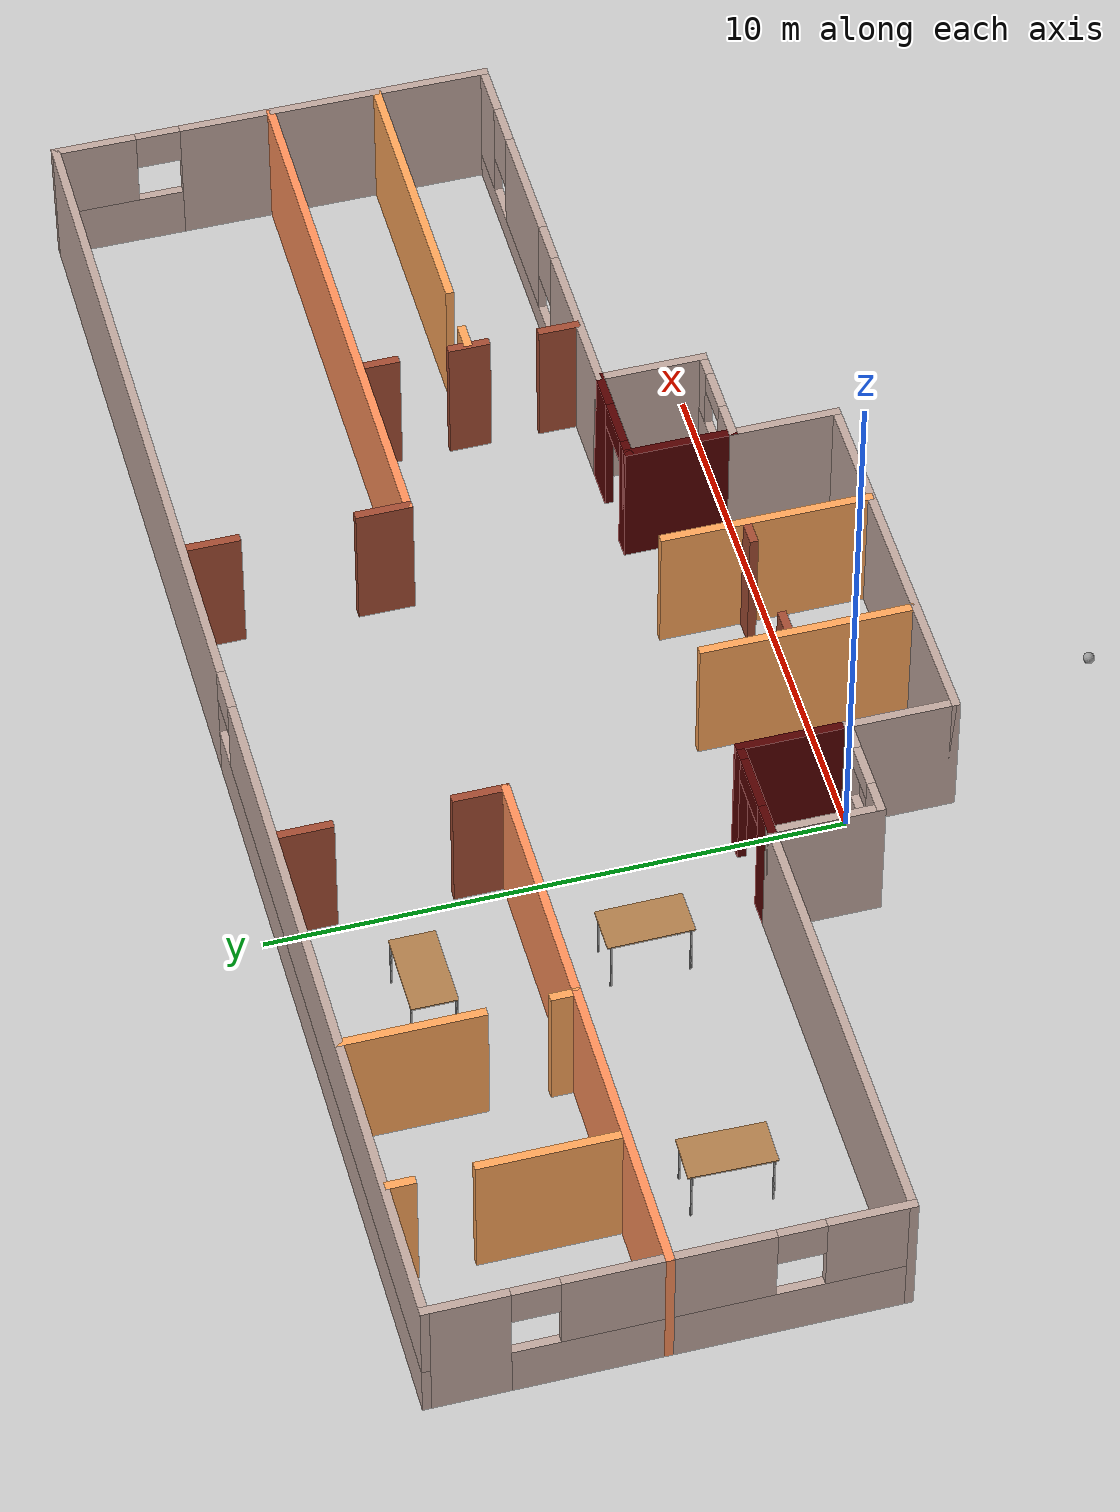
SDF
<sdf version="1.6">
 <world name="default">
  <model name="ground_plane">
   <static>1</static>
   <link name="link">
    <collision name="collision">
     <geometry><plane><normal>0 0 1</normal><size>100 100</size></plane></geometry>
     <surface>
      <contact><collide_bitmask>65535</collide_bitmask></contact>
      <friction><ode><mu>100</mu><mu2>50</mu2></ode></friction>
     </surface>
    </collision>
    <visual name="visual">
     <cast_shadows>0</cast_shadows>
     <geometry><plane><normal>0 0 1</normal><size>100 100</size></plane></geometry>
     <material>
      <script><uri>file://media/materials/scripts/gazebo.material</uri><name>Gazebo/Grey</name></script>
     </material>
    </visual>
   </link>
  </model>
  <model name="model">
   <pose>3.47044 3.95113 0 0 -0 0</pose>
   <link name="Wall_10">
    <pose>4.35076 -3.925 0 0 -0 0</pose>
    <visual name="Wall_10_Visual_0">
     <pose>-0.647646 0 1.25 0 -0 0</pose>
     <geometry><box><size>0.704708 0.15 2.5</size></box></geometry>
     <material>
      <script><uri>file://media/materials/scripts/gazebo.material</uri><name>Gazebo/Grey</name></script>
      <ambient>0.760784 0.662745 0.627451 1</ambient>
     </material>
     <meta><layer>0</layer></meta>
    </visual>
    <collision name="Wall_10_Collision_0">
     <geometry><box><size>0.704708 0.15 2.5</size></box></geometry>
     <pose>-0.647646 0 1.25 0 -0 0</pose>
    </collision>
    <visual name="Wall_10_Visual_1">
     <pose>0.352354 0 0.65 0 -0 0</pose>
     <geometry><box><size>1.29529 0.15 1.3</size></box></geometry>
     <material>
      <script><uri>file://media/materials/scripts/gazebo.material</uri><name>Gazebo/Grey</name></script>
      <ambient>0.760784 0.662745 0.627451 1</ambient>
     </material>
     <meta><layer>0</layer></meta>
    </visual>
    <collision name="Wall_10_Collision_1">
     <geometry><box><size>1.29529 0.15 1.3</size></box></geometry>
     <pose>0.352354 0 0.65 0 -0 0</pose>
    </collision>
    <visual name="Wall_10_Visual_2">
     <pose>0.752354 0 1.9 0 -0 0</pose>
     <geometry><box><size>0.495292 0.15 1.2</size></box></geometry>
     <material>
      <script><uri>file://media/materials/scripts/gazebo.material</uri><name>Gazebo/Grey</name></script>
      <ambient>0.760784 0.662745 0.627451 1</ambient>
     </material>
     <meta><layer>0</layer></meta>
    </visual>
    <collision name="Wall_10_Collision_2">
     <geometry><box><size>0.495292 0.15 1.2</size></box></geometry>
     <pose>0.752354 0 1.9 0 -0 0</pose>
    </collision>
    <visual name="Wall_10_Visual_3">
     <pose>0.104708 0 2.3 0 -0 0</pose>
     <geometry><box><size>0.8 0.15 0.4</size></box></geometry>
     <material>
      <script><uri>file://media/materials/scripts/gazebo.material</uri><name>Gazebo/Grey</name></script>
      <ambient>0.760784 0.662745 0.627451 1</ambient>
     </material>
     <meta><layer>0</layer></meta>
    </visual>
    <collision name="Wall_10_Collision_3">
     <geometry><box><size>0.8 0.15 0.4</size></box></geometry>
     <pose>0.104708 0 2.3 0 -0 0</pose>
    </collision>
   </link>
   <link name="Wall_11">
    <collision name="Wall_11_Collision">
     <geometry><box><size>2 0.15 2.5</size></box></geometry>
     <pose>0 0 1.25 0 -0 0</pose>
    </collision>
    <visual name="Wall_11_Visual">
     <pose>0 0 1.25 0 -0 0</pose>
     <geometry><box><size>2 0.15 2.5</size></box></geometry>
     <material>
      <script><uri>file://media/materials/scripts/gazebo.material</uri><name>Gazebo/Grey</name></script>
      <ambient>0.760784 0.662745 0.627451 1</ambient>
     </material>
     <meta><layer>0</layer></meta>
    </visual>
    <pose>5.27576 -3 0 0 -0 1.5708</pose>
   </link>
   <link name="Wall_12">
    <pose>9.20076 -2.075 0 0 -0 0</pose>
    <visual name="Wall_12_Visual_0">
     <pose>-2.47082 0 1.25 0 -0 0</pose>
     <geometry><box><size>3.05836 0.15 2.5</size></box></geometry>
     <material>
      <script><uri>file://media/materials/scripts/gazebo.material</uri><name>Gazebo/Grey</name></script>
      <ambient>0.760784 0.662745 0.627451 1</ambient>
     </material>
     <meta><layer>0</layer></meta>
    </visual>
    <collision name="Wall_12_Collision_0">
     <geometry><box><size>3.05836 0.15 2.5</size></box></geometry>
     <pose>-2.47082 0 1.25 0 -0 0</pose>
    </collision>
    <visual name="Wall_12_Visual_1">
     <pose>1.52918 0 0.25 0 -0 0</pose>
     <geometry><box><size>4.94164 0.15 0.5</size></box></geometry>
     <material>
      <script><uri>file://media/materials/scripts/gazebo.material</uri><name>Gazebo/Grey</name></script>
      <ambient>0.760784 0.662745 0.627451 1</ambient>
     </material>
     <meta><layer>0</layer></meta>
    </visual>
    <collision name="Wall_12_Collision_1">
     <geometry><box><size>4.94164 0.15 0.5</size></box></geometry>
     <pose>1.52918 0 0.25 0 -0 0</pose>
    </collision>
    <visual name="Wall_12_Visual_2">
     <pose>0.995093 0 1.5 0 -0 0</pose>
     <geometry><box><size>2.27347 0.15 2</size></box></geometry>
     <material>
      <script><uri>file://media/materials/scripts/gazebo.material</uri><name>Gazebo/Grey</name></script>
      <ambient>0.760784 0.662745 0.627451 1</ambient>
     </material>
     <meta><layer>0</layer></meta>
    </visual>
    <collision name="Wall_12_Collision_2">
     <geometry><box><size>2.27347 0.15 2</size></box></geometry>
     <pose>0.995093 0 1.5 0 -0 0</pose>
    </collision>
    <visual name="Wall_12_Visual_3">
     <pose>3.46591 0 1.5 0 -0 0</pose>
     <geometry><box><size>1.06817 0.15 2</size></box></geometry>
     <material>
      <script><uri>file://media/materials/scripts/gazebo.material</uri><name>Gazebo/Grey</name></script>
      <ambient>0.760784 0.662745 0.627451 1</ambient>
     </material>
     <meta><layer>0</layer></meta>
    </visual>
    <collision name="Wall_12_Collision_3">
     <geometry><box><size>1.06817 0.15 2</size></box></geometry>
     <pose>3.46591 0 1.5 0 -0 0</pose>
    </collision>
    <visual name="Wall_12_Visual_4">
     <pose>-0.54164 0 1.9 0 -0 0</pose>
     <geometry><box><size>0.8 0.15 1.2</size></box></geometry>
     <material>
      <script><uri>file://media/materials/scripts/gazebo.material</uri><name>Gazebo/Grey</name></script>
      <ambient>0.760784 0.662745 0.627451 1</ambient>
     </material>
     <meta><layer>0</layer></meta>
    </visual>
    <collision name="Wall_12_Collision_4">
     <geometry><box><size>0.8 0.15 1.2</size></box></geometry>
     <pose>-0.54164 0 1.9 0 -0 0</pose>
    </collision>
    <visual name="Wall_12_Visual_5">
     <pose>2.53183 0 1.9 0 -0 0</pose>
     <geometry><box><size>0.8 0.15 1.2</size></box></geometry>
     <material>
      <script><uri>file://media/materials/scripts/gazebo.material</uri><name>Gazebo/Grey</name></script>
      <ambient>0.760784 0.662745 0.627451 1</ambient>
     </material>
     <meta><layer>0</layer></meta>
    </visual>
    <collision name="Wall_12_Collision_5">
     <geometry><box><size>0.8 0.15 1.2</size></box></geometry>
     <pose>2.53183 0 1.9 0 -0 0</pose>
    </collision>
   </link>
   <link name="Wall_13">
    <pose>13.1258 1.85 0 0 -0 1.5708</pose>
    <visual name="Wall_13_Visual_0">
     <pose>-1.15834 0 1.25 0 -0 0</pose>
     <geometry><box><size>5.68331 0.15 2.5</size></box></geometry>
     <material>
      <script><uri>file://media/materials/scripts/gazebo.material</uri><name>Gazebo/Grey</name></script>
      <ambient>0.760784 0.662745 0.627451 1</ambient>
     </material>
     <meta><layer>0</layer></meta>
    </visual>
    <collision name="Wall_13_Collision_0">
     <geometry><box><size>5.68331 0.15 2.5</size></box></geometry>
     <pose>-1.15834 0 1.25 0 -0 0</pose>
    </collision>
    <visual name="Wall_13_Visual_1">
     <pose>2.84165 0 0.5 0 -0 0</pose>
     <geometry><box><size>2.31669 0.15 1</size></box></geometry>
     <material>
      <script><uri>file://media/materials/scripts/gazebo.material</uri><name>Gazebo/Grey</name></script>
      <ambient>0.760784 0.662745 0.627451 1</ambient>
     </material>
     <meta><layer>0</layer></meta>
    </visual>
    <collision name="Wall_13_Collision_1">
     <geometry><box><size>2.31669 0.15 1</size></box></geometry>
     <pose>2.84165 0 0.5 0 -0 0</pose>
    </collision>
    <visual name="Wall_13_Visual_2">
     <pose>3.24166 0 1.75 0 -0 0</pose>
     <geometry><box><size>1.51669 0.15 1.5</size></box></geometry>
     <material>
      <script><uri>file://media/materials/scripts/gazebo.material</uri><name>Gazebo/Grey</name></script>
      <ambient>0.760784 0.662745 0.627451 1</ambient>
     </material>
     <meta><layer>0</layer></meta>
    </visual>
    <collision name="Wall_13_Collision_2">
     <geometry><box><size>1.51669 0.15 1.5</size></box></geometry>
     <pose>3.24166 0 1.75 0 -0 0</pose>
    </collision>
    <visual name="Wall_13_Visual_3">
     <pose>2.08331 0 2.15 0 -0 0</pose>
     <geometry><box><size>0.8 0.15 0.7</size></box></geometry>
     <material>
      <script><uri>file://media/materials/scripts/gazebo.material</uri><name>Gazebo/Grey</name></script>
      <ambient>0.760784 0.662745 0.627451 1</ambient>
     </material>
     <meta><layer>0</layer></meta>
    </visual>
    <collision name="Wall_13_Collision_3">
     <geometry><box><size>0.8 0.15 0.7</size></box></geometry>
     <pose>2.08331 0 2.15 0 -0 0</pose>
    </collision>
   </link>
   <link name="Wall_14">
    <pose>0.000761 5.775 0 0 -0 3.14159</pose>
    <visual name="Wall_14_Visual_0">
     <pose>-6.79874 0 1.25 0 -0 0</pose>
     <geometry><box><size>12.8025 0.15 2.5</size></box></geometry>
     <material>
      <script><uri>file://media/materials/scripts/gazebo.material</uri><name>Gazebo/Grey</name></script>
      <ambient>0.760784 0.662745 0.627451 1</ambient>
     </material>
     <meta><layer>0</layer></meta>
    </visual>
    <collision name="Wall_14_Collision_0">
     <geometry><box><size>12.8025 0.15 2.5</size></box></geometry>
     <pose>-6.79874 0 1.25 0 -0 0</pose>
    </collision>
    <visual name="Wall_14_Visual_1">
     <pose>6.40126 0 0.5 0 -0 0</pose>
     <geometry><box><size>13.5975 0.15 1</size></box></geometry>
     <material>
      <script><uri>file://media/materials/scripts/gazebo.material</uri><name>Gazebo/Grey</name></script>
      <ambient>0.760784 0.662745 0.627451 1</ambient>
     </material>
     <meta><layer>0</layer></meta>
    </visual>
    <collision name="Wall_14_Collision_1">
     <geometry><box><size>13.5975 0.15 1</size></box></geometry>
     <pose>6.40126 0 0.5 0 -0 0</pose>
    </collision>
    <visual name="Wall_14_Visual_2">
     <pose>6.80126 0 1.75 0 -0 0</pose>
     <geometry><box><size>12.7975 0.15 1.5</size></box></geometry>
     <material>
      <script><uri>file://media/materials/scripts/gazebo.material</uri><name>Gazebo/Grey</name></script>
      <ambient>0.760784 0.662745 0.627451 1</ambient>
     </material>
     <meta><layer>0</layer></meta>
    </visual>
    <collision name="Wall_14_Collision_2">
     <geometry><box><size>12.7975 0.15 1.5</size></box></geometry>
     <pose>6.80126 0 1.75 0 -0 0</pose>
    </collision>
    <visual name="Wall_14_Visual_3">
     <pose>0.002526 0 2.15 0 -0 0</pose>
     <geometry><box><size>0.8 0.15 0.7</size></box></geometry>
     <material>
      <script><uri>file://media/materials/scripts/gazebo.material</uri><name>Gazebo/Grey</name></script>
      <ambient>0.760784 0.662745 0.627451 1</ambient>
     </material>
     <meta><layer>0</layer></meta>
    </visual>
    <collision name="Wall_14_Collision_3">
     <geometry><box><size>0.8 0.15 0.7</size></box></geometry>
     <pose>0.002526 0 2.15 0 -0 0</pose>
    </collision>
   </link>
   <link name="Wall_17">
    <collision name="Wall_17_Collision">
     <geometry><box><size>2 0.15 2.5</size></box></geometry>
     <pose>0 0 1.25 0 -0 0</pose>
    </collision>
    <visual name="Wall_17_Visual">
     <pose>0 0 1.25 0 -0 0</pose>
     <geometry><box><size>2 0.15 2.5</size></box></geometry>
     <material>
      <script><uri>file://media/materials/scripts/gazebo.material</uri><name>Gazebo/Grey</name></script>
      <ambient>0.333333 0 0 1</ambient>
     </material>
     <meta><layer>0</layer></meta>
    </visual>
    <pose>-3.42424 -3 0 0 -0 1.5708</pose>
   </link>
   <link name="Wall_19">
    <collision name="Wall_19_Collision">
     <geometry><box><size>2 0.15 2.5</size></box></geometry>
     <pose>0 0 1.25 0 -0 0</pose>
    </collision>
    <visual name="Wall_19_Visual">
     <pose>0 0 1.25 0 -0 0</pose>
     <geometry><box><size>2 0.15 2.5</size></box></geometry>
     <material>
      <script><uri>file://media/materials/scripts/gazebo.material</uri><name>Gazebo/Grey</name></script>
      <ambient>0.333333 0 0 1</ambient>
     </material>
     <meta><layer>0</layer></meta>
    </visual>
    <pose>3.42576 -3 0 0 -0 1.5708</pose>
   </link>
   <link name="Wall_23">
    <pose>-4.34924 -2.075 0 0 -0 0</pose>
    <visual name="Wall_23_Visual_0">
     <pose>-0.695709 0 1.25 0 -0 0</pose>
     <geometry><box><size>0.608582 0.15 2.5</size></box></geometry>
     <material>
      <script><uri>file://media/materials/scripts/gazebo.material</uri><name>Gazebo/Grey</name></script>
      <ambient>0.333333 0 0 1</ambient>
     </material>
     <meta><layer>0</layer></meta>
    </visual>
    <collision name="Wall_23_Collision_0">
     <geometry><box><size>0.608582 0.15 2.5</size></box></geometry>
     <pose>-0.695709 0 1.25 0 -0 0</pose>
    </collision>
    <visual name="Wall_23_Visual_1">
     <pose>0.821594 0 1.25 0 -0 0</pose>
     <geometry><box><size>0.356813 0.15 2.5</size></box></geometry>
     <material>
      <script><uri>file://media/materials/scripts/gazebo.material</uri><name>Gazebo/Grey</name></script>
      <ambient>0.333333 0 0 1</ambient>
     </material>
     <meta><layer>0</layer></meta>
    </visual>
    <collision name="Wall_23_Collision_1">
     <geometry><box><size>0.356813 0.15 2.5</size></box></geometry>
     <pose>0.821594 0 1.25 0 -0 0</pose>
    </collision>
    <visual name="Wall_23_Visual_2">
     <pose>0.125884 0 2.25 0 -0 0</pose>
     <geometry><box><size>1.03461 0.15 0.5</size></box></geometry>
     <material>
      <script><uri>file://media/materials/scripts/gazebo.material</uri><name>Gazebo/Grey</name></script>
      <ambient>0.333333 0 0 1</ambient>
     </material>
     <meta><layer>0</layer></meta>
    </visual>
    <collision name="Wall_23_Collision_2">
     <geometry><box><size>1.03461 0.15 0.5</size></box></geometry>
     <pose>0.125884 0 2.25 0 -0 0</pose>
    </collision>
   </link>
   <link name="Wall_25">
    <pose>4.35076 -2.075 0 0 -0 0</pose>
    <visual name="Wall_25_Visual_0">
     <pose>-0.82203 0 1.25 0 -0 0</pose>
     <geometry><box><size>0.35594 0.15 2.5</size></box></geometry>
     <material>
      <script><uri>file://media/materials/scripts/gazebo.material</uri><name>Gazebo/Grey</name></script>
      <ambient>0.337255 0 0 1</ambient>
     </material>
     <meta><layer>0</layer></meta>
    </visual>
    <collision name="Wall_25_Collision_0">
     <geometry><box><size>0.35594 0.15 2.5</size></box></geometry>
     <pose>-0.82203 0 1.25 0 -0 0</pose>
    </collision>
    <visual name="Wall_25_Visual_1">
     <pose>0.62797 0 1.25 0 -0 0</pose>
     <geometry><box><size>0.74406 0.15 2.5</size></box></geometry>
     <material>
      <script><uri>file://media/materials/scripts/gazebo.material</uri><name>Gazebo/Grey</name></script>
      <ambient>0.337255 0 0 1</ambient>
     </material>
     <meta><layer>0</layer></meta>
    </visual>
    <collision name="Wall_25_Collision_1">
     <geometry><box><size>0.74406 0.15 2.5</size></box></geometry>
     <pose>0.62797 0 1.25 0 -0 0</pose>
    </collision>
    <visual name="Wall_25_Visual_2">
     <pose>-0.19406 0 2.25 0 -0 0</pose>
     <geometry><box><size>0.9 0.15 0.5</size></box></geometry>
     <material>
      <script><uri>file://media/materials/scripts/gazebo.material</uri><name>Gazebo/Grey</name></script>
      <ambient>0.337255 0 0 1</ambient>
     </material>
     <meta><layer>0</layer></meta>
    </visual>
    <collision name="Wall_25_Collision_2">
     <geometry><box><size>0.9 0.15 0.5</size></box></geometry>
     <pose>-0.19406 0 2.25 0 -0 0</pose>
    </collision>
   </link>
   <link name="Wall_27">
    <collision name="Wall_27_Collision">
     <geometry><box><size>10 0.15 2.5</size></box></geometry>
     <pose>0 0 1.25 0 -0 0</pose>
    </collision>
    <visual name="Wall_27_Visual">
     <pose>0 0 1.25 0 -0 0</pose>
     <geometry><box><size>10 0.15 2.5</size></box></geometry>
     <material>
      <script><uri>file://media/materials/scripts/gazebo.material</uri><name>Gazebo/Grey</name></script>
      <ambient>1 0.568627 0.352941 1</ambient>
     </material>
     <meta><layer>0</layer></meta>
    </visual>
    <pose>-8.20076 1.8559 0 0 -0 0</pose>
   </link>
   <link name="Wall_29">
    <collision name="Wall_29_Collision">
     <geometry><box><size>1 0.15 2.5</size></box></geometry>
     <pose>0 0 1.25 0 -0 0</pose>
    </collision>
    <visual name="Wall_29_Visual">
     <pose>0 0 1.25 0 -0 0</pose>
     <geometry><box><size>1 0.15 2.5</size></box></geometry>
     <material>
      <script><uri>file://media/materials/scripts/gazebo.material</uri><name>Gazebo/Bricks</name></script>
      <ambient>1 1 1 1</ambient>
     </material>
     <meta><layer>0</layer></meta>
    </visual>
    <pose>-3.27576 2.2809 0 0 -0 1.5708</pose>
   </link>
   <link name="Wall_3">
    <pose>-13.1242 1.85 0 0 0 -1.5708</pose>
    <visual name="Wall_3_Visual_0">
     <pose>-3.27577 0 1.25 0 -0 0</pose>
     <geometry><box><size>1.44847 0.15 2.5</size></box></geometry>
     <material>
      <script><uri>file://media/materials/scripts/gazebo.material</uri><name>Gazebo/Grey</name></script>
      <ambient>0.760784 0.662745 0.627451 1</ambient>
     </material>
     <meta><layer>0</layer></meta>
    </visual>
    <collision name="Wall_3_Collision_0">
     <geometry><box><size>1.44847 0.15 2.5</size></box></geometry>
     <pose>-3.27577 0 1.25 0 -0 0</pose>
    </collision>
    <visual name="Wall_3_Visual_1">
     <pose>0.724233 0 0.5 0 -0 0</pose>
     <geometry><box><size>6.55153 0.15 1</size></box></geometry>
     <material>
      <script><uri>file://media/materials/scripts/gazebo.material</uri><name>Gazebo/Grey</name></script>
      <ambient>0.760784 0.662745 0.627451 1</ambient>
     </material>
     <meta><layer>0</layer></meta>
    </visual>
    <collision name="Wall_3_Collision_1">
     <geometry><box><size>6.55153 0.15 1</size></box></geometry>
     <pose>0.724233 0 0.5 0 -0 0</pose>
    </collision>
    <visual name="Wall_3_Visual_2">
     <pose>-0.01388 0 1.75 0 -0 0</pose>
     <geometry><box><size>3.47531 0.15 1.5</size></box></geometry>
     <material>
      <script><uri>file://media/materials/scripts/gazebo.material</uri><name>Gazebo/Grey</name></script>
      <ambient>0.760784 0.662745 0.627451 1</ambient>
     </material>
     <meta><layer>0</layer></meta>
    </visual>
    <collision name="Wall_3_Collision_2">
     <geometry><box><size>3.47531 0.15 1.5</size></box></geometry>
     <pose>-0.01388 0 1.75 0 -0 0</pose>
    </collision>
    <visual name="Wall_3_Visual_3">
     <pose>3.26189 0 1.75 0 -0 0</pose>
     <geometry><box><size>1.47623 0.15 1.5</size></box></geometry>
     <material>
      <script><uri>file://media/materials/scripts/gazebo.material</uri><name>Gazebo/Grey</name></script>
      <ambient>0.760784 0.662745 0.627451 1</ambient>
     </material>
     <meta><layer>0</layer></meta>
    </visual>
    <collision name="Wall_3_Collision_3">
     <geometry><box><size>1.47623 0.15 1.5</size></box></geometry>
     <pose>3.26189 0 1.75 0 -0 0</pose>
    </collision>
    <visual name="Wall_3_Visual_4">
     <pose>-2.15153 0 2.15 0 -0 0</pose>
     <geometry><box><size>0.8 0.15 0.7</size></box></geometry>
     <material>
      <script><uri>file://media/materials/scripts/gazebo.material</uri><name>Gazebo/Grey</name></script>
      <ambient>0.760784 0.662745 0.627451 1</ambient>
     </material>
     <meta><layer>0</layer></meta>
    </visual>
    <collision name="Wall_3_Collision_4">
     <geometry><box><size>0.8 0.15 0.7</size></box></geometry>
     <pose>-2.15153 0 2.15 0 -0 0</pose>
    </collision>
    <visual name="Wall_3_Visual_5">
     <pose>2.12377 0 2.15 0 -0 0</pose>
     <geometry><box><size>0.8 0.15 0.7</size></box></geometry>
     <material>
      <script><uri>file://media/materials/scripts/gazebo.material</uri><name>Gazebo/Grey</name></script>
      <ambient>0.760784 0.662745 0.627451 1</ambient>
     </material>
     <meta><layer>0</layer></meta>
    </visual>
    <collision name="Wall_3_Collision_5">
     <geometry><box><size>0.8 0.15 0.7</size></box></geometry>
     <pose>2.12377 0 2.15 0 -0 0</pose>
    </collision>
   </link>
   <link name="Wall_31">
    <collision name="Wall_31_Collision">
     <geometry><box><size>1 0.15 2.5</size></box></geometry>
     <pose>0 0 1.25 0 -0 0</pose>
    </collision>
    <visual name="Wall_31_Visual">
     <pose>0 0 1.25 0 -0 0</pose>
     <geometry><box><size>1 0.15 2.5</size></box></geometry>
     <material>
      <script><uri>file://media/materials/scripts/gazebo.material</uri><name>Gazebo/Bricks</name></script>
      <ambient>1 1 1 1</ambient>
     </material>
     <meta><layer>0</layer></meta>
    </visual>
    <pose>-3.28723 5.2599 0 0 0 -1.5708</pose>
   </link>
   <link name="Wall_33">
    <collision name="Wall_33_Collision">
     <geometry><box><size>10 0.15 2.5</size></box></geometry>
     <pose>0 0 1.25 0 -0 0</pose>
    </collision>
    <visual name="Wall_33_Visual">
     <pose>0 0 1.25 0 -0 0</pose>
     <geometry><box><size>10 0.15 2.5</size></box></geometry>
     <material>
      <script><uri>file://media/materials/scripts/gazebo.material</uri><name>Gazebo/Grey</name></script>
      <ambient>1 0.568627 0.352941 1</ambient>
     </material>
     <meta><layer>0</layer></meta>
    </visual>
    <pose>8.16802 1.85434 0 0 -0 3.14159</pose>
   </link>
   <link name="Wall_34">
    <collision name="Wall_34_Collision">
     <geometry><box><size>1 0.15 2.5</size></box></geometry>
     <pose>0 0 1.25 0 -0 0</pose>
    </collision>
    <visual name="Wall_34_Visual">
     <pose>0 0 1.25 0 -0 0</pose>
     <geometry><box><size>1 0.15 2.5</size></box></geometry>
     <material>
      <script><uri>file://media/materials/scripts/gazebo.material</uri><name>Gazebo/Bricks</name></script>
      <ambient>1 1 1 1</ambient>
     </material>
     <meta><layer>0</layer></meta>
    </visual>
    <pose>3.23171 2.27934 0 0 -0 1.5708</pose>
   </link>
   <link name="Wall_36">
    <collision name="Wall_36_Collision">
     <geometry><box><size>1 0.15 2.5</size></box></geometry>
     <pose>0 0 1.25 0 -0 0</pose>
    </collision>
    <visual name="Wall_36_Visual">
     <pose>0 0 1.25 0 -0 0</pose>
     <geometry><box><size>1 0.15 2.5</size></box></geometry>
     <material>
      <script><uri>file://media/materials/scripts/gazebo.material</uri><name>Gazebo/Bricks</name></script>
      <ambient>1 1 1 1</ambient>
     </material>
     <meta><layer>0</layer></meta>
    </visual>
    <pose>3.24957 5.26265 0 0 0 -1.5708</pose>
   </link>
   <link name="Wall_4">
    <collision name="Wall_4_Collision">
     <geometry><box><size>8 0.15 2.5</size></box></geometry>
     <pose>0 0 1.25 0 -0 0</pose>
    </collision>
    <visual name="Wall_4_Visual">
     <pose>0 0 1.25 0 -0 0</pose>
     <geometry><box><size>8 0.15 2.5</size></box></geometry>
     <material>
      <script><uri>file://media/materials/scripts/gazebo.material</uri><name>Gazebo/Grey</name></script>
      <ambient>0.760784 0.662745 0.627451 1</ambient>
     </material>
     <meta><layer>0</layer></meta>
    </visual>
    <pose>-9.19924 -2.075 0 0 -0 0</pose>
   </link>
   <link name="Wall_40">
    <collision name="Wall_40_Collision">
     <geometry><box><size>3.75 0.15 2.5</size></box></geometry>
     <pose>0 0 1.25 0 -0 0</pose>
    </collision>
    <visual name="Wall_40_Visual">
     <pose>0 0 1.25 0 -0 0</pose>
     <geometry><box><size>3.75 0.15 2.5</size></box></geometry>
     <material>
      <script><uri>file://media/materials/scripts/gazebo.material</uri><name>Gazebo/Grey</name></script>
      <ambient>1 0.654902 0.352941 1</ambient>
     </material>
     <meta><layer>0</layer></meta>
    </visual>
    <pose>-1.2227 -3.87802 0 0 -0 1.5708</pose>
   </link>
   <link name="Wall_42">
    <collision name="Wall_42_Collision">
     <geometry><box><size>3.75 0.15 2.5</size></box></geometry>
     <pose>0 0 1.25 0 -0 0</pose>
    </collision>
    <visual name="Wall_42_Visual">
     <pose>0 0 1.25 0 -0 0</pose>
     <geometry><box><size>3.75 0.15 2.5</size></box></geometry>
     <material>
      <script><uri>file://media/materials/scripts/gazebo.material</uri><name>Gazebo/Grey</name></script>
      <ambient>1 0.654902 0.352941 1</ambient>
     </material>
     <meta><layer>0</layer></meta>
    </visual>
    <pose>1.36977 -3.93472 0 0 -0 1.5708</pose>
   </link>
   <link name="Wall_44">
    <collision name="Wall_44_Collision">
     <geometry><box><size>0.5 0.15 2.5</size></box></geometry>
     <pose>0 0 1.25 0 -0 0</pose>
    </collision>
    <visual name="Wall_44_Visual">
     <pose>0 0 1.25 0 -0 0</pose>
     <geometry><box><size>0.5 0.15 2.5</size></box></geometry>
     <material>
      <script><uri>file://media/materials/scripts/gazebo.material</uri><name>Gazebo/Bricks</name></script>
      <ambient>1 1 1 1</ambient>
     </material>
     <meta><layer>0</layer></meta>
    </visual>
    <pose>-1.00222 -3.57433 0 0 -0 0</pose>
   </link>
   <link name="Wall_46">
    <collision name="Wall_46_Collision">
     <geometry><box><size>0.5 0.15 2.5</size></box></geometry>
     <pose>0 0 1.25 0 -0 0</pose>
    </collision>
    <visual name="Wall_46_Visual">
     <pose>0 0 1.25 0 -0 0</pose>
     <geometry><box><size>0.5 0.15 2.5</size></box></geometry>
     <material>
      <script><uri>file://media/materials/scripts/gazebo.material</uri><name>Gazebo/Bricks</name></script>
      <ambient>1 1 1 1</ambient>
     </material>
     <meta><layer>0</layer></meta>
    </visual>
    <pose>1.13792 -3.57433 0 0 -0 3.14159</pose>
   </link>
   <link name="Wall_48">
    <collision name="Wall_48_Collision">
     <geometry><box><size>0.5 0.15 2.5</size></box></geometry>
     <pose>0 0 1.25 0 -0 0</pose>
    </collision>
    <visual name="Wall_48_Visual">
     <pose>0 0 1.25 0 -0 0</pose>
     <geometry><box><size>0.5 0.15 2.5</size></box></geometry>
     <material>
      <script><uri>file://media/materials/scripts/gazebo.material</uri><name>Gazebo/Grey</name></script>
      <ambient>1 0.654902 0.352941 1</ambient>
     </material>
     <meta><layer>0</layer></meta>
    </visual>
    <pose>-10.6509 5.51316 0 0 0 -1.5708</pose>
   </link>
   <link name="Wall_5">
    <collision name="Wall_5_Collision">
     <geometry><box><size>2 0.15 2.5</size></box></geometry>
     <pose>0 0 1.25 0 -0 0</pose>
    </collision>
    <visual name="Wall_5_Visual">
     <pose>0 0 1.25 0 -0 0</pose>
     <geometry><box><size>2 0.15 2.5</size></box></geometry>
     <material>
      <script><uri>file://media/materials/scripts/gazebo.material</uri><name>Gazebo/Grey</name></script>
      <ambient>0.760784 0.662745 0.627451 1</ambient>
     </material>
     <meta><layer>0</layer></meta>
    </visual>
    <pose>-5.27424 -3 0 0 0 -1.5708</pose>
   </link>
   <link name="Wall_50">
    <collision name="Wall_50_Collision">
     <geometry><box><size>2.5 0.15 2.5</size></box></geometry>
     <pose>0 0 1.25 0 -0 0</pose>
    </collision>
    <visual name="Wall_50_Visual">
     <pose>0 0 1.25 0 -0 0</pose>
     <geometry><box><size>2.5 0.15 2.5</size></box></geometry>
     <material>
      <script><uri>file://media/materials/scripts/gazebo.material</uri><name>Gazebo/Grey</name></script>
      <ambient>1 0.654902 0.352941 1</ambient>
     </material>
     <meta><layer>0</layer></meta>
    </visual>
    <pose>-10.6378 3.0748 0 0 0 -1.5708</pose>
   </link>
   <link name="Wall_52">
    <collision name="Wall_52_Collision">
     <geometry><box><size>0.5 0.15 2.5</size></box></geometry>
     <pose>0 0 1.25 0 -0 0</pose>
    </collision>
    <visual name="Wall_52_Visual">
     <pose>0 0 1.25 0 -0 0</pose>
     <geometry><box><size>0.5 0.15 2.5</size></box></geometry>
     <material>
      <script><uri>file://media/materials/scripts/gazebo.material</uri><name>Gazebo/Grey</name></script>
      <ambient>1 0.654902 0.352941 1</ambient>
     </material>
     <meta><layer>0</layer></meta>
    </visual>
    <pose>-7.69566 2.05803 0 0 -0 1.5708</pose>
   </link>
   <link name="Wall_54">
    <collision name="Wall_54_Collision">
     <geometry><box><size>2.5 0.15 2.5</size></box></geometry>
     <pose>0 0 1.25 0 -0 0</pose>
    </collision>
    <visual name="Wall_54_Visual">
     <pose>0 0 1.25 0 -0 0</pose>
     <geometry><box><size>2.5 0.15 2.5</size></box></geometry>
     <material>
      <script><uri>file://media/materials/scripts/gazebo.material</uri><name>Gazebo/Grey</name></script>
      <ambient>1 0.654902 0.352941 1</ambient>
     </material>
     <meta><layer>0</layer></meta>
    </visual>
    <pose>-7.70873 4.58793 0 0 -0 1.5708</pose>
   </link>
   <link name="Wall_56">
    <collision name="Wall_56_Collision">
     <geometry><box><size>0.75 0.15 2.5</size></box></geometry>
     <pose>0 0 1.25 0 -0 0</pose>
    </collision>
    <visual name="Wall_56_Visual">
     <pose>0 0 1.25 0 -0 0</pose>
     <geometry><box><size>0.75 0.15 2.5</size></box></geometry>
     <material>
      <script><uri>file://media/materials/scripts/gazebo.material</uri><name>Gazebo/Bricks</name></script>
      <ambient>1 1 1 1</ambient>
     </material>
     <meta><layer>0</layer></meta>
    </visual>
    <pose>6.59323 1.52679 0 0 0 -1.5708</pose>
   </link>
   <link name="Wall_58">
    <collision name="Wall_58_Collision">
     <geometry><box><size>0.75 0.15 2.5</size></box></geometry>
     <pose>0 0 1.25 0 -0 0</pose>
    </collision>
    <visual name="Wall_58_Visual">
     <pose>0 0 1.25 0 -0 0</pose>
     <geometry><box><size>0.75 0.15 2.5</size></box></geometry>
     <material>
      <script><uri>file://media/materials/scripts/gazebo.material</uri><name>Gazebo/Bricks</name></script>
      <ambient>1 1 1 1</ambient>
     </material>
     <meta><layer>0</layer></meta>
    </visual>
    <pose>6.59695 -1.70286 0 0 -0 1.5708</pose>
   </link>
   <link name="Wall_6">
    <pose>-4.34924 -3.925 0 0 -0 0</pose>
    <visual name="Wall_6_Visual_0">
     <pose>-0.698028 0 1.25 0 -0 0</pose>
     <geometry><box><size>0.603944 0.15 2.5</size></box></geometry>
     <material>
      <script><uri>file://media/materials/scripts/gazebo.material</uri><name>Gazebo/Grey</name></script>
      <ambient>0.760784 0.662745 0.627451 1</ambient>
     </material>
     <meta><layer>0</layer></meta>
    </visual>
    <collision name="Wall_6_Collision_0">
     <geometry><box><size>0.603944 0.15 2.5</size></box></geometry>
     <pose>-0.698028 0 1.25 0 -0 0</pose>
    </collision>
    <visual name="Wall_6_Visual_1">
     <pose>0.301972 0 0.65 0 -0 0</pose>
     <geometry><box><size>1.39606 0.15 1.3</size></box></geometry>
     <material>
      <script><uri>file://media/materials/scripts/gazebo.material</uri><name>Gazebo/Grey</name></script>
      <ambient>0.760784 0.662745 0.627451 1</ambient>
     </material>
     <meta><layer>0</layer></meta>
    </visual>
    <collision name="Wall_6_Collision_1">
     <geometry><box><size>1.39606 0.15 1.3</size></box></geometry>
     <pose>0.301972 0 0.65 0 -0 0</pose>
    </collision>
    <visual name="Wall_6_Visual_2">
     <pose>0.701972 0 1.9 0 -0 0</pose>
     <geometry><box><size>0.596056 0.15 1.2</size></box></geometry>
     <material>
      <script><uri>file://media/materials/scripts/gazebo.material</uri><name>Gazebo/Grey</name></script>
      <ambient>0.760784 0.662745 0.627451 1</ambient>
     </material>
     <meta><layer>0</layer></meta>
    </visual>
    <collision name="Wall_6_Collision_2">
     <geometry><box><size>0.596056 0.15 1.2</size></box></geometry>
     <pose>0.701972 0 1.9 0 -0 0</pose>
    </collision>
    <visual name="Wall_6_Visual_3">
     <pose>0.003944 0 2.3 0 -0 0</pose>
     <geometry><box><size>0.8 0.15 0.4</size></box></geometry>
     <material>
      <script><uri>file://media/materials/scripts/gazebo.material</uri><name>Gazebo/Grey</name></script>
      <ambient>0.760784 0.662745 0.627451 1</ambient>
     </material>
     <meta><layer>0</layer></meta>
    </visual>
    <collision name="Wall_6_Collision_3">
     <geometry><box><size>0.8 0.15 0.4</size></box></geometry>
     <pose>0.003944 0 2.3 0 -0 0</pose>
    </collision>
   </link>
   <link name="Wall_60">
    <collision name="Wall_60_Collision">
     <geometry><box><size>0.75 0.15 2.5</size></box></geometry>
     <pose>0 0 1.25 0 -0 0</pose>
    </collision>
    <visual name="Wall_60_Visual">
     <pose>0 0 1.25 0 -0 0</pose>
     <geometry><box><size>0.75 0.15 2.5</size></box></geometry>
     <material>
      <script><uri>file://media/materials/scripts/gazebo.material</uri><name>Gazebo/Bricks</name></script>
      <ambient>1 1 1 1</ambient>
     </material>
     <meta><layer>0</layer></meta>
    </visual>
    <pose>6.59837 -0.088973 0 0 0 -1.5708</pose>
   </link>
   <link name="Wall_63">
    <collision name="Wall_63_Collision">
     <geometry><box><size>0.5 0.15 2.5</size></box></geometry>
     <pose>0 0 1.25 0 -0 0</pose>
    </collision>
    <visual name="Wall_63_Visual">
     <pose>0 0 1.25 0 -0 0</pose>
     <geometry><box><size>0.5 0.15 2.5</size></box></geometry>
     <material>
      <script><uri>file://media/materials/scripts/gazebo.material</uri><name>Gazebo/Grey</name></script>
      <ambient>1 0.654902 0.352941 1</ambient>
     </material>
     <meta><layer>0</layer></meta>
    </visual>
    <pose>6.82789 -0.082364 0 0 -0 0</pose>
   </link>
   <link name="Wall_66">
    <collision name="Wall_66_Collision">
     <geometry><box><size>5.25 0.15 2.5</size></box></geometry>
     <pose>0 0 1.25 0 -0 0</pose>
    </collision>
    <visual name="Wall_66_Visual">
     <pose>0 0 1.25 0 -0 0</pose>
     <geometry><box><size>5.25 0.15 2.5</size></box></geometry>
     <material>
      <script><uri>file://media/materials/scripts/gazebo.material</uri><name>Gazebo/Grey</name></script>
      <ambient>1 0.654902 0.352941 1</ambient>
     </material>
     <meta><layer>0</layer></meta>
    </visual>
    <pose>10.5259 -0.093263 0 0 -0 0</pose>
   </link>
   <link name="Wall_7">
    <collision name="Wall_7_Collision">
     <geometry><box><size>2 0.15 2.5</size></box></geometry>
     <pose>0 0 1.25 0 -0 0</pose>
    </collision>
    <visual name="Wall_7_Visual">
     <pose>0 0 1.25 0 -0 0</pose>
     <geometry><box><size>2 0.15 2.5</size></box></geometry>
     <material>
      <script><uri>file://media/materials/scripts/gazebo.material</uri><name>Gazebo/Grey</name></script>
      <ambient>0.760784 0.662745 0.627451 1</ambient>
     </material>
     <meta><layer>0</layer></meta>
    </visual>
    <pose>-3.42424 -4.85 0 0 0 -1.5708</pose>
   </link>
   <link name="Wall_8">
    <collision name="Wall_8_Collision">
     <geometry><box><size>7 0.15 2.5</size></box></geometry>
     <pose>0 0 1.25 0 -0 0</pose>
    </collision>
    <visual name="Wall_8_Visual">
     <pose>0 0 1.25 0 -0 0</pose>
     <geometry><box><size>7 0.15 2.5</size></box></geometry>
     <material>
      <script><uri>file://media/materials/scripts/gazebo.material</uri><name>Gazebo/Grey</name></script>
      <ambient>0.760784 0.662745 0.627451 1</ambient>
     </material>
     <meta><layer>0</layer></meta>
    </visual>
    <pose>0.000761 -5.775 0 0 -0 0</pose>
   </link>
   <link name="Wall_9">
    <collision name="Wall_9_Collision">
     <geometry><box><size>2 0.15 2.5</size></box></geometry>
     <pose>0 0 1.25 0 -0 0</pose>
    </collision>
    <visual name="Wall_9_Visual">
     <pose>0 0 1.25 0 -0 0</pose>
     <geometry><box><size>2 0.15 2.5</size></box></geometry>
     <material>
      <script><uri>file://media/materials/scripts/gazebo.material</uri><name>Gazebo/Grey</name></script>
      <ambient>0.760784 0.662745 0.627451 1</ambient>
     </material>
     <meta><layer>0</layer></meta>
    </visual>
    <pose>3.42576 -4.85 0 0 -0 1.5708</pose>
   </link>
   <static>1</static>
  </model>
  <model name="table">
   <static>1</static>
   <link name="link">
    <collision name="surface">
     <pose>0 0 1 0 -0 0</pose>
     <geometry><box><size>1.5 0.8 0.03</size></box></geometry>
     <surface><friction><ode><mu>0.6</mu><mu2>0.6</mu2></ode></friction></surface>
    </collision>
    <visual name="visual1">
     <pose>0 0 1 0 -0 0</pose>
     <geometry><box><size>1.5 0.8 0.03</size></box></geometry>
     <material>
      <script><uri>file://media/materials/scripts/gazebo.material</uri><name>Gazebo/Wood</name></script>
     </material>
    </visual>
    <collision name="front_left_leg">
     <pose>0.68 0.38 0.5 0 -0 0</pose>
     <geometry><cylinder><radius>0.02</radius><length>1</length></cylinder></geometry>
    </collision>
    <visual name="front_left_leg">
     <pose>0.68 0.38 0.5 0 -0 0</pose>
     <geometry><cylinder><radius>0.02</radius><length>1</length></cylinder></geometry>
     <material>
      <script><uri>file://media/materials/scripts/gazebo.material</uri><name>Gazebo/Grey</name></script>
     </material>
    </visual>
    <collision name="front_right_leg">
     <pose>0.68 -0.38 0.5 0 -0 0</pose>
     <geometry><cylinder><radius>0.02</radius><length>1</length></cylinder></geometry>
    </collision>
    <visual name="front_right_leg">
     <pose>0.68 -0.38 0.5 0 -0 0</pose>
     <geometry><cylinder><radius>0.02</radius><length>1</length></cylinder></geometry>
     <material>
      <script><uri>file://media/materials/scripts/gazebo.material</uri><name>Gazebo/Grey</name></script>
     </material>
    </visual>
    <collision name="back_right_leg">
     <pose>-0.68 -0.38 0.5 0 -0 0</pose>
     <geometry><cylinder><radius>0.02</radius><length>1</length></cylinder></geometry>
    </collision>
    <visual name="back_right_leg">
     <pose>-0.68 -0.38 0.5 0 -0 0</pose>
     <geometry><cylinder><radius>0.02</radius><length>1</length></cylinder></geometry>
     <material>
      <script><uri>file://media/materials/scripts/gazebo.material</uri><name>Gazebo/Grey</name></script>
     </material>
    </visual>
    <collision name="back_left_leg">
     <pose>-0.68 0.38 0.5 0 -0 0</pose>
     <geometry><cylinder><radius>0.02</radius><length>1</length></cylinder></geometry>
    </collision>
    <visual name="back_left_leg">
     <pose>-0.68 0.38 0.5 0 -0 0</pose>
     <geometry><cylinder><radius>0.02</radius><length>1</length></cylinder></geometry>
     <material>
      <script><uri>file://media/materials/scripts/gazebo.material</uri><name>Gazebo/Grey</name></script>
     </material>
    </visual>
   </link>
   <pose>-1.99098 7.78386 0 0 -0 0</pose>
  </model>
  <model name="table_2">
   <static>1</static>
   <link name="link">
    <collision name="surface">
     <pose>0 0 1 0 -0 0</pose>
     <geometry><box><size>1.5 0.8 0.03</size></box></geometry>
     <surface><friction><ode><mu>0.6</mu><mu2>0.6</mu2></ode></friction></surface>
    </collision>
    <visual name="visual1">
     <pose>0 0 1 0 -0 0</pose>
     <geometry><box><size>1.5 0.8 0.03</size></box></geometry>
     <material>
      <script><uri>file://media/materials/scripts/gazebo.material</uri><name>Gazebo/Wood</name></script>
     </material>
    </visual>
    <collision name="front_left_leg">
     <pose>0.68 0.38 0.5 0 -0 0</pose>
     <geometry><cylinder><radius>0.02</radius><length>1</length></cylinder></geometry>
    </collision>
    <visual name="front_left_leg">
     <pose>0.68 0.38 0.5 0 -0 0</pose>
     <geometry><cylinder><radius>0.02</radius><length>1</length></cylinder></geometry>
     <material>
      <script><uri>file://media/materials/scripts/gazebo.material</uri><name>Gazebo/Grey</name></script>
     </material>
    </visual>
    <collision name="front_right_leg">
     <pose>0.68 -0.38 0.5 0 -0 0</pose>
     <geometry><cylinder><radius>0.02</radius><length>1</length></cylinder></geometry>
    </collision>
    <visual name="front_right_leg">
     <pose>0.68 -0.38 0.5 0 -0 0</pose>
     <geometry><cylinder><radius>0.02</radius><length>1</length></cylinder></geometry>
     <material>
      <script><uri>file://media/materials/scripts/gazebo.material</uri><name>Gazebo/Grey</name></script>
     </material>
    </visual>
    <collision name="back_right_leg">
     <pose>-0.68 -0.38 0.5 0 -0 0</pose>
     <geometry><cylinder><radius>0.02</radius><length>1</length></cylinder></geometry>
    </collision>
    <visual name="back_right_leg">
     <pose>-0.68 -0.38 0.5 0 -0 0</pose>
     <geometry><cylinder><radius>0.02</radius><length>1</length></cylinder></geometry>
     <material>
      <script><uri>file://media/materials/scripts/gazebo.material</uri><name>Gazebo/Grey</name></script>
     </material>
    </visual>
    <collision name="back_left_leg">
     <pose>-0.68 0.38 0.5 0 -0 0</pose>
     <geometry><cylinder><radius>0.02</radius><length>1</length></cylinder></geometry>
    </collision>
    <visual name="back_left_leg">
     <pose>-0.68 0.38 0.5 0 -0 0</pose>
     <geometry><cylinder><radius>0.02</radius><length>1</length></cylinder></geometry>
     <material>
      <script><uri>file://media/materials/scripts/gazebo.material</uri><name>Gazebo/Grey</name></script>
     </material>
    </visual>
   </link>
   <pose>-1.938 4.03032 0 0 -0 1.57752</pose>
  </model>
  <model name="table_3">
   <static>1</static>
   <link name="link">
    <collision name="surface">
     <pose>0 0 1 0 -0 0</pose>
     <geometry><box><size>1.5 0.8 0.03</size></box></geometry>
     <surface><friction><ode><mu>0.6</mu><mu2>0.6</mu2></ode></friction></surface>
    </collision>
    <visual name="visual1">
     <pose>0 0 1 0 -0 0</pose>
     <geometry><box><size>1.5 0.8 0.03</size></box></geometry>
     <material>
      <script><uri>file://media/materials/scripts/gazebo.material</uri><name>Gazebo/Wood</name></script>
     </material>
    </visual>
    <collision name="front_left_leg">
     <pose>0.68 0.38 0.5 0 -0 0</pose>
     <geometry><cylinder><radius>0.02</radius><length>1</length></cylinder></geometry>
    </collision>
    <visual name="front_left_leg">
     <pose>0.68 0.38 0.5 0 -0 0</pose>
     <geometry><cylinder><radius>0.02</radius><length>1</length></cylinder></geometry>
     <material>
      <script><uri>file://media/materials/scripts/gazebo.material</uri><name>Gazebo/Grey</name></script>
     </material>
    </visual>
    <collision name="front_right_leg">
     <pose>0.68 -0.38 0.5 0 -0 0</pose>
     <geometry><cylinder><radius>0.02</radius><length>1</length></cylinder></geometry>
    </collision>
    <visual name="front_right_leg">
     <pose>0.68 -0.38 0.5 0 -0 0</pose>
     <geometry><cylinder><radius>0.02</radius><length>1</length></cylinder></geometry>
     <material>
      <script><uri>file://media/materials/scripts/gazebo.material</uri><name>Gazebo/Grey</name></script>
     </material>
    </visual>
    <collision name="back_right_leg">
     <pose>-0.68 -0.38 0.5 0 -0 0</pose>
     <geometry><cylinder><radius>0.02</radius><length>1</length></cylinder></geometry>
    </collision>
    <visual name="back_right_leg">
     <pose>-0.68 -0.38 0.5 0 -0 0</pose>
     <geometry><cylinder><radius>0.02</radius><length>1</length></cylinder></geometry>
     <material>
      <script><uri>file://media/materials/scripts/gazebo.material</uri><name>Gazebo/Grey</name></script>
     </material>
    </visual>
    <collision name="back_left_leg">
     <pose>-0.68 0.38 0.5 0 -0 0</pose>
     <geometry><cylinder><radius>0.02</radius><length>1</length></cylinder></geometry>
    </collision>
    <visual name="back_left_leg">
     <pose>-0.68 0.38 0.5 0 -0 0</pose>
     <geometry><cylinder><radius>0.02</radius><length>1</length></cylinder></geometry>
     <material>
      <script><uri>file://media/materials/scripts/gazebo.material</uri><name>Gazebo/Grey</name></script>
     </material>
    </visual>
   </link>
   <pose>-6.80807 4.0344 0 0 -0 1.54802</pose>
  </model>
  <model name="my_ball">
   <link name="link_0">
    <inertial>
     <mass>1</mass>
     <inertia><ixx>0.1</ixx><ixy>0</ixy><ixz>0</ixz><iyy>0.1</iyy><iyz>0</iyz><izz>0.1</izz></inertia>
    </inertial>
    <visual name="visual">
     <geometry><sphere><radius>0.1</radius></sphere></geometry>
     <material>
      <lighting>1</lighting>
      <script><uri>file://media/materials/scripts/gazebo.material</uri><name>Gazebo/Grey</name></script>
      <shader type="pixel"><normal_map>__default__</normal_map></shader>
      <ambient>1 1 1 1</ambient>
      <diffuse>1 1 1 1</diffuse>
      <specular>1 1 1 1</specular>
      <emissive>1 1 1 1</emissive>
     </material>
    </visual>
    <collision name="collision">
     <geometry><sphere><radius>0.1</radius></sphere></geometry>
     <surface>
      <friction>
       <ode><mu>1</mu><mu2>1</mu2><fdir1>0 0 0</fdir1><slip1>0</slip1><slip2>0</slip2></ode>
       <torsional>
        <coefficient>1</coefficient>
        <patch_radius>0</patch_radius>
        <surface_radius>0</surface_radius>
        <use_patch_radius>1</use_patch_radius>
        <ode><slip>0</slip></ode>
       </torsional>
      </friction>
      <bounce><restitution_coefficient>0</restitution_coefficient><threshold>1e+06</threshold></bounce>
      <contact>
       <collide_without_contact>0</collide_without_contact>
       <collide_without_contact_bitmask>1</collide_without_contact_bitmask>
       <collide_bitmask>1</collide_bitmask>
       <ode>
        <soft_cfm>0</soft_cfm>
        <soft_erp>0.2</soft_erp>
        <kp>1e+13</kp>
        <kd>1</kd>
        <max_vel>0.01</max_vel>
        <min_depth>0</min_depth>
       </ode>
       <bullet>
        <split_impulse>1</split_impulse>
        <split_impulse_penetration_threshold>-0.01</split_impulse_penetration_threshold>
        <soft_cfm>0</soft_cfm>
        <soft_erp>0.2</soft_erp>
        <kp>1e+13</kp>
        <kd>1</kd>
       </bullet>
      </contact>
     </surface>
    </collision>
   </link>
   <static>0</static>
   <pose>2.37863 -5.04586 0.1 0 -0 0</pose>
  </model>
 </world>
</sdf>
